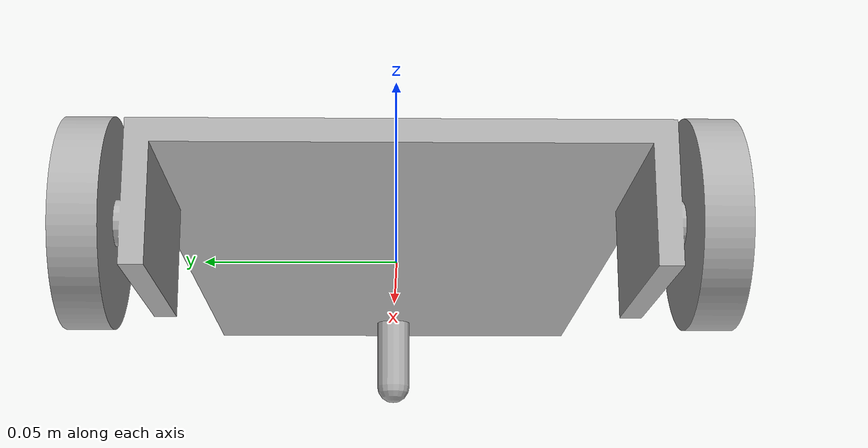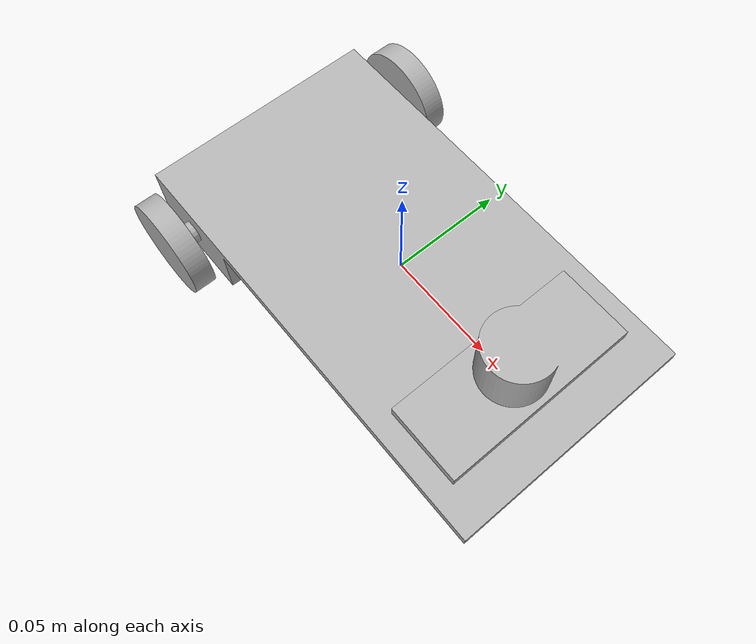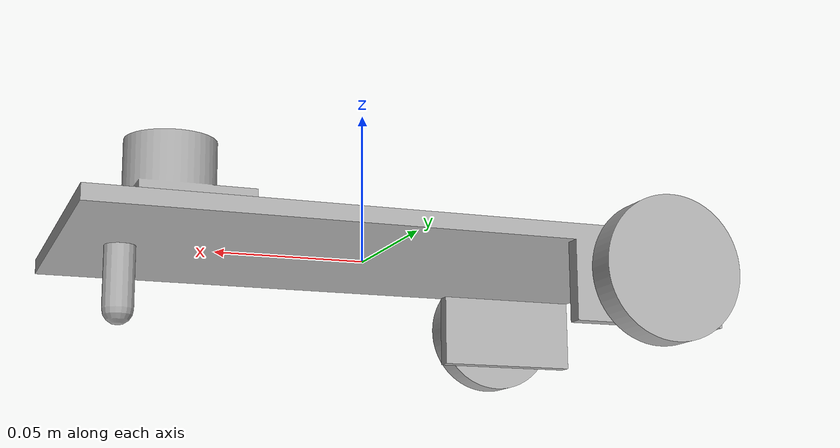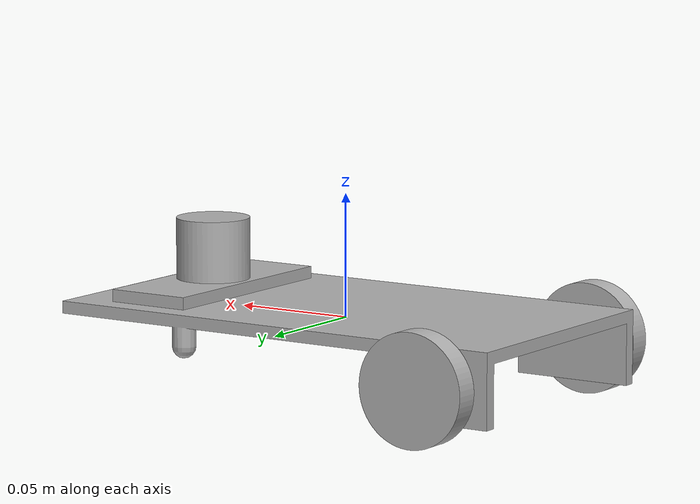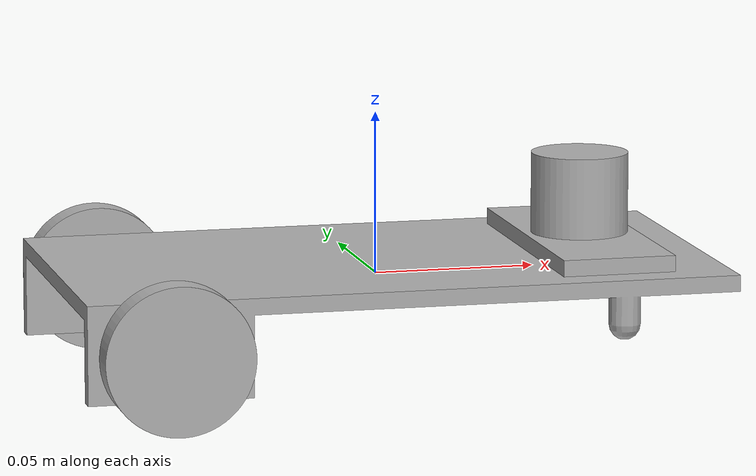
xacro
<?xml version="1.0" ?>
<robot name="day5" xmlns:xacro="http://www.ros.org/wiki/xacro">

<xacro:include filename="$(find day5_description)/urdf/materials.xacro" />
<xacro:include filename="$(find day5_description)/urdf/day5.trans" />
<xacro:include filename="$(find day5_description)/urdf/day5.gazebo" />
<link name="base_link">
  <inertial>
    <origin xyz="-0.00679196652394022 -9.086369937646658e-18 0.0007152144117776478" rpy="0 0 0"/>
    <mass value="0.982176251064928"/>
    <inertia ixx="0.001192" iyy="0.003563" izz="0.004694" ixy="-0.0" iyz="0.0" ixz="-8.8e-05"/>
  </inertial>
  <visual>
    <origin xyz="0 0 0" rpy="0 0 0"/>
    <geometry>
      <mesh filename="package://day5_description/meshes/base_link.stl" scale="0.001 0.001 0.001"/>
    </geometry>
    <material name="silver"/>
  </visual>
  <collision>
    <origin xyz="0 0 0" rpy="0 0 0"/>
    <geometry>
      <mesh filename="package://day5_description/meshes/base_link.stl" scale="0.001 0.001 0.001"/>
    </geometry>
  </collision>
</link>

<link name="right_1">
  <inertial>
    <origin xyz="1.3877787807814457e-17 -0.0049999999254942 -3.3888210388723083e-07" rpy="0 0 0"/>
    <mass value="0.12484885554906684"/>
    <inertia ixx="1.7e-05" iyy="3.2e-05" izz="1.7e-05" ixy="0.0" iyz="0.0" ixz="0.0"/>
  </inertial>
  <visual>
    <origin xyz="0.075 0.06 0.009936" rpy="0 0 0"/>
    <geometry>
      <mesh filename="package://day5_description/meshes/right_1.stl" scale="0.001 0.001 0.001"/>
    </geometry>
    <material name="silver"/>
  </visual>
  <collision>
    <origin xyz="0.075 0.06 0.009936" rpy="0 0 0"/>
    <geometry>
      <mesh filename="package://day5_description/meshes/right_1.stl" scale="0.001 0.001 0.001"/>
    </geometry>
  </collision>
</link>

<link name="left_1">
  <inertial>
    <origin xyz="1.3877787807814457e-17 0.0049999999254942 -1.734723475976807e-18" rpy="0 0 0"/>
    <mass value="0.12484885554906686"/>
    <inertia ixx="1.7e-05" iyy="3.2e-05" izz="1.7e-05" ixy="0.0" iyz="0.0" ixz="-0.0"/>
  </inertial>
  <visual>
    <origin xyz="0.075 -0.06 0.01" rpy="0 0 0"/>
    <geometry>
      <mesh filename="package://day5_description/meshes/left_1.stl" scale="0.001 0.001 0.001"/>
    </geometry>
    <material name="silver"/>
  </visual>
  <collision>
    <origin xyz="0.075 -0.06 0.01" rpy="0 0 0"/>
    <geometry>
      <mesh filename="package://day5_description/meshes/left_1.stl" scale="0.001 0.001 0.001"/>
    </geometry>
  </collision>
</link>

<link name="lidar_1">
  <inertial>
    <origin xyz="-0.03500000014884576 5.551115123125783e-18 0.010431188243841618" rpy="0 0 0"/>
    <mass value="0.26235845061007307"/>
    <inertia ixx="0.000113" iyy="4.3e-05" izz="0.000112" ixy="0.0" iyz="-0.0" ixz="0.0"/>
  </inertial>
  <visual>
    <origin xyz="-0.1 -0.0 -0.005" rpy="0 0 0"/>
    <geometry>
      <mesh filename="package://day5_description/meshes/lidar_1.stl" scale="0.001 0.001 0.001"/>
    </geometry>
    <material name="silver"/>
  </visual>
  <collision>
    <origin xyz="-0.1 -0.0 -0.005" rpy="0 0 0"/>
    <geometry>
      <mesh filename="package://day5_description/meshes/lidar_1.stl" scale="0.001 0.001 0.001"/>
    </geometry>
  </collision>
</link>

<joint name="Rev2" type="continuous">
  <origin xyz="-0.075 -0.06 -0.009936" rpy="0 0 0"/>
  <parent link="base_link"/>
  <child link="right_1"/>
  <axis xyz="0.0 1.0 0.0"/>
</joint>

<joint name="Rev4" type="continuous">
  <origin xyz="-0.075 0.06 -0.01" rpy="0 0 0"/>
  <parent link="base_link"/>
  <child link="left_1"/>
  <axis xyz="0.0 1.0 0.0"/>
</joint>

<joint name="Rigid5" type="fixed">
  <origin xyz="0.1 0.0 0.005" rpy="0 0 0"/>
  <parent link="base_link"/>
  <child link="lidar_1"/>
</joint>

</robot>

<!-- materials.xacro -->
<robot name="day5" xmlns:xacro="http://www.ros.org/wiki/xacro" >

<material name="silver">
  <color rgba="0.700 0.700 0.700 1.000"/>
</material>

</robot>

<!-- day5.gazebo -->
<robot name="day5" xmlns:xacro="http://www.ros.org/wiki/xacro" >

<xacro:property name="body_color" value="Gazebo/Silver" />

<gazebo>
  <plugin name="control" filename="libgazebo_ros_control.so"/>
</gazebo>
<gazebo reference="base_link">
  <material>${body_color}</material>
  <mu1>0.2</mu1>
  <mu2>0.2</mu2>
  <selfCollide>true</selfCollide>
  <gravity>true</gravity>
</gazebo>

<gazebo reference="right_1">
  <material>${body_color}</material>
  <mu1>0.2</mu1>
  <mu2>0.2</mu2>
  <selfCollide>true</selfCollide>
</gazebo>

<gazebo reference="left_1">
  <material>${body_color}</material>
  <mu1>0.2</mu1>
  <mu2>0.2</mu2>
  <selfCollide>true</selfCollide>
</gazebo>

<gazebo reference="lidar_1">
  <material>${body_color}</material>
  <mu1>0.2</mu1>
  <mu2>0.2</mu2>
  <selfCollide>true</selfCollide>
</gazebo>
  <gazebo>
  <plugin name="differential_drive_controller" filename="libgazebo_ros_diff_drive.so">

    <!-- Plugin update rate in Hz -->
    <updateRate>${1000}</updateRate>

    <!-- Name of left joint, defaults to `left_joint` -->
    <leftJoint>Rev4</leftJoint>

    <!-- Name of right joint, defaults to `right_joint` -->
    <rightJoint>Rev2</rightJoint>

    <!-- The distance from the center of one wheel to the other, in meters, defaults to 0.34 m -->
    <wheelSeparation>0.5380</wheelSeparation>

    <!-- Diameter of the wheels, in meters, defaults to 0.15 m -->
    <wheelDiameter>0.2410</wheelDiameter>

    <!-- Wheel acceleration, in rad/s^2, defaults to 0.0 rad/s^2 -->
    <wheelAcceleration>1.0</wheelAcceleration>

    <!-- Maximum torque which the wheels can produce, in Nm, defaults to 5 Nm -->
    <wheelTorque>20</wheelTorque>

    <!-- Topic to receive geometry_msgs/Twist message commands, defaults to `cmd_vel` -->
    <commandTopic>cmd_vel</commandTopic>

    <!-- Topic to publish nav_msgs/Odometry messages, defaults to `odom` -->
    <odometryTopic>odom</odometryTopic>

    <!-- Odometry frame, defaults to `odom` -->
    <odometryFrame>odom</odometryFrame>

    <!-- Robot frame to calculate odometry from, defaults to `base_footprint` -->
    <robotBaseFrame>base_link</robotBaseFrame>

    <!-- Odometry source, 0 for ENCODER, 1 for WORLD, defaults to WORLD -->
    <odometrySource>1</odometrySource>

    <!-- Set to true to publish transforms for the wheel links, defaults to false -->
    <publishWheelTF>true</publishWheelTF>

    <!-- Set to true to publish transforms for the odometry, defaults to true -->
    <publishOdom>true</publishOdom>

    <!-- Set to true to publish sensor_msgs/JointState on /joint_states for the wheel joints, defaults to false -->
    <publishWheelJointState>true</publishWheelJointState>

    <!-- Set to true to swap right and left wheels, defaults to true -->
    <legacyMode>false</legacyMode>
  </plugin>
</gazebo>

</robot>
